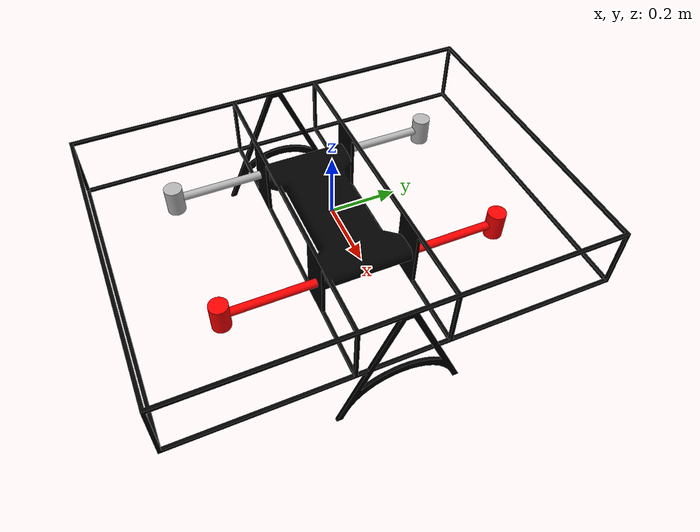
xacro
<?xml version="1.0" ?>
<robot name="koala" xmlns:xacro="http://www.ros.org/wiki/xacro">

  <xacro:arg name="is_simulation" default="true" />

  <material name="silver">
    <color rgba="0.700 0.700 0.700 1.000"/>
  </material>

  <material name="black">
    <color rgba="0.001 0.001 0.001 1.000"/>
  </material>

  <material name="red">
    <color rgba="0.990 0.000 0.000 1.000"/>
  </material>

  <link name="base_link">
  </link>

  <link name="drone_frame">
    <visual>
      <origin xyz="0 0 0" rpy="0 0 0"/>
      <geometry>
        <mesh filename="package://koala_description/meshes/koala_base_link.stl" scale="0.001 0.001 0.001"/>
      </geometry>
      <material name="black"/>
    </visual>
  </link>

  <link name="arm_fwd">
    <visual>
      <origin xyz="0.23 0 0" rpy="0 0 0"/>
      <geometry>
        <mesh filename="package://koala_description/meshes/koala_arm.stl" scale="0.001 0.001 0.001"/>
      </geometry>
      <material name="red"/>
    </visual>
  </link>

  <link name="arm_bwd">
    <visual>
      <origin xyz="0.23 0 0" rpy="0 0 0"/>
      <geometry>
        <mesh filename="package://koala_description/meshes/koala_arm.stl" scale="0.001 0.001 0.001"/>
      </geometry>
      <material name="silver"/>
    </visual>
  </link>

  <joint name="base_to_frame" type="fixed" >
    <origin xyz="0.0 0.0 0.0" rpy="0.0 0.0 0.0" />
    <parent link="base_link" />
    <child link="drone_frame" />
  </joint>

  <joint name="arm_joint_fwd" type="fixed">
    <origin xyz="0.23 0 0" rpy="0 0 0"/>
    <parent link="drone_frame"/>
    <child link="arm_fwd"/>
    <axis xyz="0.0 1.0 0.0"/>
    <limit effort="30" velocity="5.0" lower="-1.57" upper="1.57"/>
  </joint>

  <joint name="arm_joint_bwd" type="fixed">
    <origin xyz="-0.23 0 0" rpy="0 0 0"/>
    <parent link="drone_frame"/>
    <child link="arm_bwd"/>
    <axis xyz="0.0 1.0 0.0"/>
    <limit effort="30" velocity="5.0" lower="-1.57" upper="1.57"/>
  </joint>

</robot>
